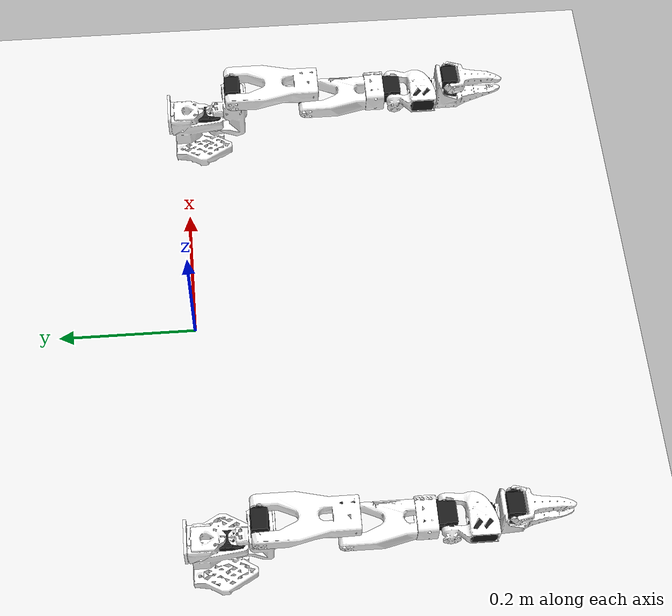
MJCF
<?xml version='1.0' encoding='utf-8'?>
<mujoco model="two_arms"><compiler angle="radian" meshdir="assets/" /><option integrator="Euler" /><asset>
    <material name="white" rgba="1 1 1 1" />
    <material name="black" rgba="0.1 0.1 0.1 1" />

    <mesh name="Base" file="Base.stl" />
    <mesh name="Base_Motor" file="Base_Motor.stl" />
    <mesh name="Rotation_Pitch" file="Rotation_Pitch.stl" />
    <mesh name="Rotation_Pitch_Motor" file="Rotation_Pitch_Motor.stl" />
    <mesh name="Upper_Arm" file="Upper_Arm.stl" />
    <mesh name="Upper_Arm_Motor" file="Upper_Arm_Motor.stl" />
    <mesh name="Lower_Arm" file="Lower_Arm.stl" />
    <mesh name="Lower_Arm_Motor" file="Lower_Arm_Motor.stl" />
    <mesh name="Wrist_Pitch_Roll" file="Wrist_Pitch_Roll.stl" />
    <mesh name="Wrist_Pitch_Roll_Motor" file="Wrist_Pitch_Roll_Motor.stl" />
    <mesh name="Fixed_Jaw" file="Fixed_Jaw.stl" />
    <mesh name="Fixed_Jaw_Motor" file="Fixed_Jaw_Motor.stl" />
    <mesh name="Fixed_Jaw_Collision_1" file="Fixed_Jaw_Collision_1.stl" />
    <mesh name="Fixed_Jaw_Collision_2" file="Fixed_Jaw_Collision_2.stl" />
    <mesh name="Moving_Jaw" file="Moving_Jaw.stl" />
    <mesh name="Moving_Jaw_Collision_1" file="Moving_Jaw_Collision_1.stl" />
    <mesh name="Moving_Jaw_Collision_2" file="Moving_Jaw_Collision_2.stl" />
    <mesh name="Moving_Jaw_Collision_3" file="Moving_Jaw_Collision_3.stl" />
  </asset>

  <default>
    <default class="so_arm100">
      <joint frictionloss="0.1" armature="0.1" />
      <position kp="50" dampratio="1" forcerange="-3.5 3.5" />
      <default class="Rotation">
        <joint axis="0 -1 0" range="-1.92 1.92" />
      </default>
      <default class="Pitch">
        <joint axis="1 0 0" range="-3.32 0.174" />
      </default>
      <default class="Elbow">
        <joint axis="1 0 0" range="-0.174 3.14" />
      </default>
      <default class="Wrist_Pitch">
        <joint axis="1 0 0" range="-1.66 1.66" />
      </default>
      <default class="Wrist_Roll">
        <joint axis="0 1 0" range="-2.79 2.79" />
      </default>
      <default class="Jaw">
        <joint axis="0 0 1" range="-0.174 1.75" />
      </default>
      <default class="visual">
        <geom type="mesh" contype="0" conaffinity="0" density="0" group="2" material="white" />
        <default class="motor_visual">
          <geom material="black" />
        </default>
      </default>
      <default class="collision">
        <geom group="3" type="mesh" material="white" />
        <default class="finger_collision">
          <geom type="box" solimp="2 1 0.01" solref="0.01 1" friction="1 0.005 0.0001" />
        </default>
      </default>
    </default>
  </default>

  <worldbody><geom name="floor" type="plane" size="5 5 0.1" rgba="0.9 0.9 0.9 1" /><light pos="0 0 3" dir="0 0 -1" diffuse=".8 .8 .8" /><body name="robot_r1" pos="-0.35 0 0"><body name="Base_r1" childclass="so_arm100">
      <geom type="mesh" mesh="Base" class="visual" />
      <geom type="mesh" mesh="Base_Motor" class="motor_visual" />
      <geom type="mesh" mesh="Base" class="collision" />
      <body name="Rotation_Pitch_r1" pos="0 -0.0452 0.0165" quat="0.707105 0.707108 0 0">
        <inertial pos="-9.07886e-05 0.0590972 0.031089" quat="0.363978 0.441169 -0.623108 0.533504" mass="0.119226" diaginertia="5.94278e-05 5.89975e-05 3.13712e-05" />
        <joint name="Rotation_r1" class="Rotation" />
        <geom type="mesh" mesh="Rotation_Pitch" class="visual" />
        <geom type="mesh" mesh="Rotation_Pitch_Motor" class="motor_visual" />
        <geom type="mesh" mesh="Rotation_Pitch" class="collision" />
        <body name="Upper_Arm_r1" pos="0 0.1025 0.0306" euler="1.57079 0 0">
          <inertial pos="-1.72052e-05 0.0701802 0.00310545" quat="0.50104 0.498994 -0.493562 0.50632" mass="0.162409" diaginertia="0.000213312 0.000167164 7.01522e-05" />
          <joint name="Pitch_r1" class="Pitch" />
          <geom type="mesh" mesh="Upper_Arm" class="visual" />
          <geom type="mesh" mesh="Upper_Arm_Motor" class="motor_visual" />
          <geom type="mesh" mesh="Upper_Arm" class="collision" />
          <body name="Lower_Arm_r1" pos="0 0.11257 0.028" euler="-1.57079 0 0">
            <inertial pos="-0.00339604 0.00137796 0.0768007" quat="0.701995 0.0787996 0.0645626 0.704859" mass="0.147968" diaginertia="0.000138803 0.000107748 4.84242e-05" />
            <joint name="Elbow_r1" class="Elbow" />
            <geom type="mesh" mesh="Lower_Arm" class="visual" />
            <geom type="mesh" mesh="Lower_Arm_Motor" class="motor_visual" />
            <geom type="mesh" mesh="Lower_Arm" class="collision" />
            <body name="Wrist_Pitch_Roll_r1" pos="0 0.0052 0.1349" euler="-1.57079 0 0">
              <inertial pos="-0.00852653 -0.0352279 -2.34622e-05" quat="-0.0522806 0.705235 0.0549524 0.704905" mass="0.0661321" diaginertia="3.45403e-05 2.39041e-05 1.94704e-05" />
              <joint name="Wrist_Pitch_r1" class="Wrist_Pitch" />
              <geom type="mesh" mesh="Wrist_Pitch_Roll" class="visual" />
              <geom type="mesh" mesh="Wrist_Pitch_Roll_Motor" class="motor_visual" />
              <geom type="mesh" mesh="Wrist_Pitch_Roll" class="collision" />
              <body name="Fixed_Jaw_r1" pos="0 -0.0601 0" euler="0 1.57079 0">
                <inertial pos="0.00552377 -0.0280167 0.000483583" quat="0.41836 0.620891 -0.350644 0.562599" mass="0.0929859" diaginertia="5.03136e-05 4.64098e-05 2.72961e-05" />
                <joint name="Wrist_Roll_r1" class="Wrist_Roll" />
                <geom type="mesh" mesh="Fixed_Jaw" class="visual" />
                <geom type="mesh" mesh="Fixed_Jaw_Motor" class="motor_visual" />
                <geom type="mesh" mesh="Fixed_Jaw_Collision_1" class="collision" />
                <geom type="mesh" mesh="Fixed_Jaw_Collision_2" class="collision" />
                <geom class="finger_collision" name="fixed_jaw_pad_1_r1" size="0.001 0.005 0.004" pos="0.0089 -0.1014 0" />
                <geom class="finger_collision" name="fixed_jaw_pad_2_r1" size="0.001 0.005 0.006" pos="0.0109 -0.0914 0" />
                <geom class="finger_collision" name="fixed_jaw_pad_3_r1" size="0.001 0.01 0.007" pos="0.0126 -0.0768 0" />
                <geom class="finger_collision" name="fixed_jaw_pad_4_r1" size="0.001 0.01 0.008" pos="0.0143 -0.0572 0" />
                <body name="Moving_Jaw_r1" pos="-0.0202 -0.0244 0" quat="1.34924e-11 -3.67321e-06 1 -3.67321e-06">
                  <inertial pos="-0.00161745 -0.0303473 0.000449646" quat="0.696562 0.716737 -0.0239844 -0.0227026" mass="0.0202444" diaginertia="1.11265e-05 8.99651e-06 2.99548e-06" />
                  <joint name="Jaw_r1" class="Jaw" />
                  <geom type="mesh" mesh="Moving_Jaw" class="visual" />
                  <geom type="mesh" mesh="Moving_Jaw_Collision_1" class="collision" />
                  <geom type="mesh" mesh="Moving_Jaw_Collision_2" class="collision" />
                  <geom type="mesh" mesh="Moving_Jaw_Collision_3" class="collision" />
                  <geom class="finger_collision" name="moving_jaw_pad_1_r1" size="0.001 0.005 0.004" pos="-0.0113 -0.077 0" />
                  <geom class="finger_collision" name="moving_jaw_pad_2_r1" size="0.001 0.005 0.006" pos="-0.0093 -0.067 0" />
                  <geom class="finger_collision" name="moving_jaw_pad_3_r1" size="0.001 0.01 0.006" pos="-0.0073 -0.055 0" />
                  <geom class="finger_collision" name="moving_jaw_pad_4_r1" size="0.001 0.01 0.008" pos="-0.0073 -0.035 0" />
                </body>
              </body>
            </body>
          </body>
        </body>
      </body>
    </body>
  </body><body name="robot_r2" pos="0.35 0 0"><body name="Base_r2" childclass="so_arm100">
      <geom type="mesh" mesh="Base" class="visual" />
      <geom type="mesh" mesh="Base_Motor" class="motor_visual" />
      <geom type="mesh" mesh="Base" class="collision" />
      <body name="Rotation_Pitch_r2" pos="0 -0.0452 0.0165" quat="0.707105 0.707108 0 0">
        <inertial pos="-9.07886e-05 0.0590972 0.031089" quat="0.363978 0.441169 -0.623108 0.533504" mass="0.119226" diaginertia="5.94278e-05 5.89975e-05 3.13712e-05" />
        <joint name="Rotation_r2" class="Rotation" />
        <geom type="mesh" mesh="Rotation_Pitch" class="visual" />
        <geom type="mesh" mesh="Rotation_Pitch_Motor" class="motor_visual" />
        <geom type="mesh" mesh="Rotation_Pitch" class="collision" />
        <body name="Upper_Arm_r2" pos="0 0.1025 0.0306" euler="1.57079 0 0">
          <inertial pos="-1.72052e-05 0.0701802 0.00310545" quat="0.50104 0.498994 -0.493562 0.50632" mass="0.162409" diaginertia="0.000213312 0.000167164 7.01522e-05" />
          <joint name="Pitch_r2" class="Pitch" />
          <geom type="mesh" mesh="Upper_Arm" class="visual" />
          <geom type="mesh" mesh="Upper_Arm_Motor" class="motor_visual" />
          <geom type="mesh" mesh="Upper_Arm" class="collision" />
          <body name="Lower_Arm_r2" pos="0 0.11257 0.028" euler="-1.57079 0 0">
            <inertial pos="-0.00339604 0.00137796 0.0768007" quat="0.701995 0.0787996 0.0645626 0.704859" mass="0.147968" diaginertia="0.000138803 0.000107748 4.84242e-05" />
            <joint name="Elbow_r2" class="Elbow" />
            <geom type="mesh" mesh="Lower_Arm" class="visual" />
            <geom type="mesh" mesh="Lower_Arm_Motor" class="motor_visual" />
            <geom type="mesh" mesh="Lower_Arm" class="collision" />
            <body name="Wrist_Pitch_Roll_r2" pos="0 0.0052 0.1349" euler="-1.57079 0 0">
              <inertial pos="-0.00852653 -0.0352279 -2.34622e-05" quat="-0.0522806 0.705235 0.0549524 0.704905" mass="0.0661321" diaginertia="3.45403e-05 2.39041e-05 1.94704e-05" />
              <joint name="Wrist_Pitch_r2" class="Wrist_Pitch" />
              <geom type="mesh" mesh="Wrist_Pitch_Roll" class="visual" />
              <geom type="mesh" mesh="Wrist_Pitch_Roll_Motor" class="motor_visual" />
              <geom type="mesh" mesh="Wrist_Pitch_Roll" class="collision" />
              <body name="Fixed_Jaw_r2" pos="0 -0.0601 0" euler="0 1.57079 0">
                <inertial pos="0.00552377 -0.0280167 0.000483583" quat="0.41836 0.620891 -0.350644 0.562599" mass="0.0929859" diaginertia="5.03136e-05 4.64098e-05 2.72961e-05" />
                <joint name="Wrist_Roll_r2" class="Wrist_Roll" />
                <geom type="mesh" mesh="Fixed_Jaw" class="visual" />
                <geom type="mesh" mesh="Fixed_Jaw_Motor" class="motor_visual" />
                <geom type="mesh" mesh="Fixed_Jaw_Collision_1" class="collision" />
                <geom type="mesh" mesh="Fixed_Jaw_Collision_2" class="collision" />
                <geom class="finger_collision" name="fixed_jaw_pad_1_r2" size="0.001 0.005 0.004" pos="0.0089 -0.1014 0" />
                <geom class="finger_collision" name="fixed_jaw_pad_2_r2" size="0.001 0.005 0.006" pos="0.0109 -0.0914 0" />
                <geom class="finger_collision" name="fixed_jaw_pad_3_r2" size="0.001 0.01 0.007" pos="0.0126 -0.0768 0" />
                <geom class="finger_collision" name="fixed_jaw_pad_4_r2" size="0.001 0.01 0.008" pos="0.0143 -0.0572 0" />
                <body name="Moving_Jaw_r2" pos="-0.0202 -0.0244 0" quat="1.34924e-11 -3.67321e-06 1 -3.67321e-06">
                  <inertial pos="-0.00161745 -0.0303473 0.000449646" quat="0.696562 0.716737 -0.0239844 -0.0227026" mass="0.0202444" diaginertia="1.11265e-05 8.99651e-06 2.99548e-06" />
                  <joint name="Jaw_r2" class="Jaw" />
                  <geom type="mesh" mesh="Moving_Jaw" class="visual" />
                  <geom type="mesh" mesh="Moving_Jaw_Collision_1" class="collision" />
                  <geom type="mesh" mesh="Moving_Jaw_Collision_2" class="collision" />
                  <geom type="mesh" mesh="Moving_Jaw_Collision_3" class="collision" />
                  <geom class="finger_collision" name="moving_jaw_pad_1_r2" size="0.001 0.005 0.004" pos="-0.0113 -0.077 0" />
                  <geom class="finger_collision" name="moving_jaw_pad_2_r2" size="0.001 0.005 0.006" pos="-0.0093 -0.067 0" />
                  <geom class="finger_collision" name="moving_jaw_pad_3_r2" size="0.001 0.01 0.006" pos="-0.0073 -0.055 0" />
                  <geom class="finger_collision" name="moving_jaw_pad_4_r2" size="0.001 0.01 0.008" pos="-0.0073 -0.035 0" />
                </body>
              </body>
            </body>
          </body>
        </body>
      </body>
    </body>
  </body></worldbody><actuator><position class="Rotation" name="Rotation_r1" joint="Rotation_r1" inheritrange="1" />
    <position class="Pitch" name="Pitch_r1" joint="Pitch_r1" inheritrange="1" />
    <position class="Elbow" name="Elbow_r1" joint="Elbow_r1" inheritrange="1" />
    <position class="Wrist_Pitch" name="Wrist_Pitch_r1" joint="Wrist_Pitch_r1" inheritrange="1" />
    <position class="Wrist_Roll" name="Wrist_Roll_r1" joint="Wrist_Roll_r1" inheritrange="1" />
    <position class="Jaw" name="Jaw_r1" joint="Jaw_r1" inheritrange="1" />
  <position class="Rotation" name="Rotation_r2" joint="Rotation_r2" inheritrange="1" />
    <position class="Pitch" name="Pitch_r2" joint="Pitch_r2" inheritrange="1" />
    <position class="Elbow" name="Elbow_r2" joint="Elbow_r2" inheritrange="1" />
    <position class="Wrist_Pitch" name="Wrist_Pitch_r2" joint="Wrist_Pitch_r2" inheritrange="1" />
    <position class="Wrist_Roll" name="Wrist_Roll_r2" joint="Wrist_Roll_r2" inheritrange="1" />
    <position class="Jaw" name="Jaw_r2" joint="Jaw_r2" inheritrange="1" />
  </actuator></mujoco>
